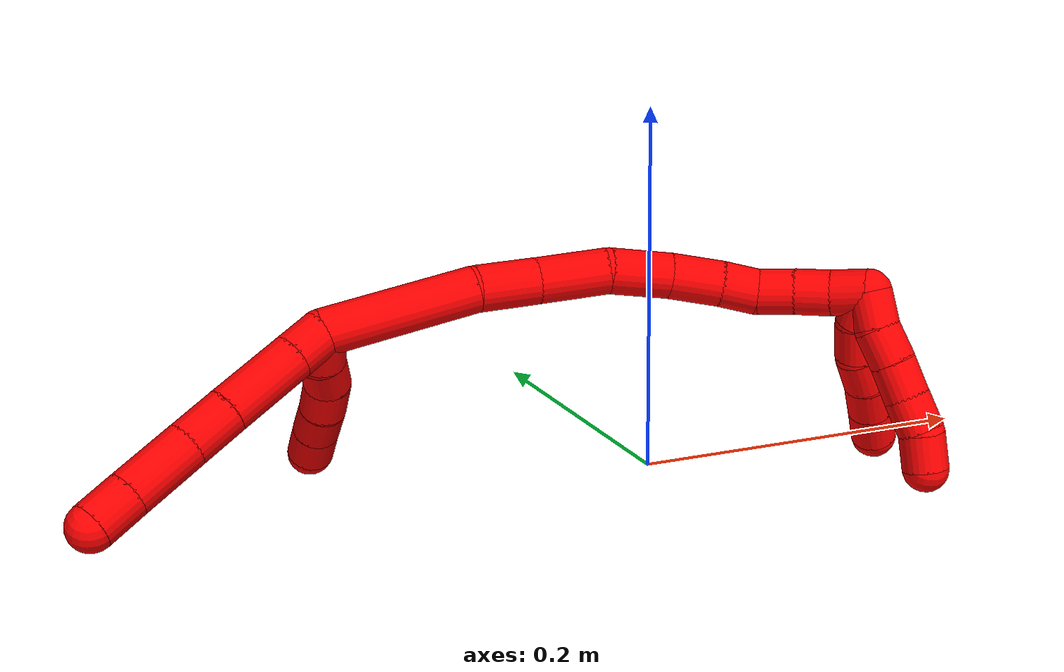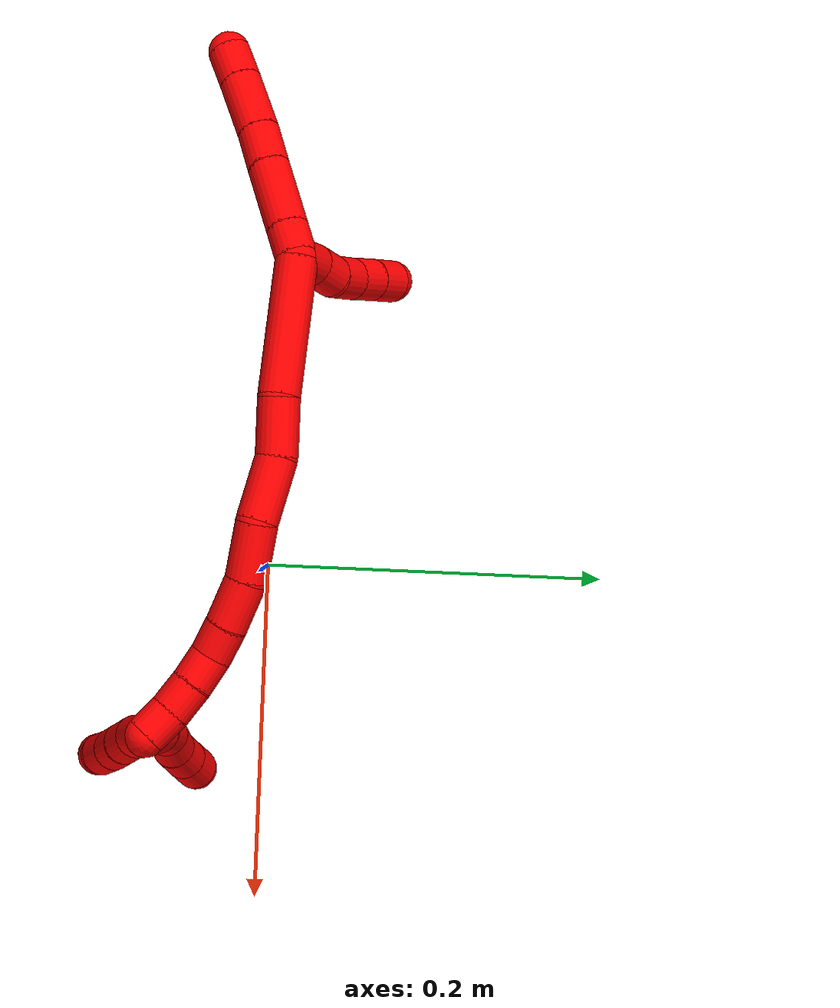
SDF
<sdf version="1.7">
 <world name="default">
  <model name="2">
   <static>0</static>
   <link name="2">
    <collision name="collision-cylinder-e_1_2_8">
     <pose>-0.008926 -0.004605 -0.001841 1.95113 -1.06363 -1.43069</pose>
     <geometry><cylinder><radius>0.0125</radius><length>0.020423</length></cylinder></geometry>
     <surface>
      <friction><ode><mu>1.16</mu><mu2>1.16</mu2><slip1>0</slip1><slip2>0</slip2></ode></friction>
      <contact><ode><kp>1e+06</kp><kd>1</kd><max_vel>0</max_vel><min_depth>0.001</min_depth></ode></contact>
     </surface>
    </collision>
    <visual name="visual-cylinder-e_1_2_8">
     <pose>-0.008926 -0.004605 -0.001841 1.95113 -1.06363 -1.43069</pose>
     <geometry><cylinder><radius>0.0125</radius><length>0.020423</length></cylinder></geometry>
     <material><ambient>1 0 0 1</ambient></material>
    </visual>
    <collision name="collision-cylinder-e_2_8_9">
     <pose>-0.037016 -0.019109 -0.007658 1.95272 -1.0629 -1.43156</pose>
     <geometry><cylinder><radius>0.0125</radius><length>0.043865</length></cylinder></geometry>
     <surface>
      <friction><ode><mu>1.16</mu><mu2>1.16</mu2><slip1>0</slip1><slip2>0</slip2></ode></friction>
      <contact><ode><kp>1e+06</kp><kd>1</kd><max_vel>0</max_vel><min_depth>0.001</min_depth></ode></contact>
     </surface>
    </collision>
    <visual name="visual-cylinder-e_2_8_9">
     <pose>-0.037016 -0.019109 -0.007658 1.95272 -1.0629 -1.43156</pose>
     <geometry><cylinder><radius>0.0125</radius><length>0.043865</length></cylinder></geometry>
     <material><ambient>1 0 0 1</ambient></material>
    </visual>
    <collision name="collision-cylinder-e_3_9_10">
     <pose>-0.067494 -0.034797 -0.014259 1.99655 -1.05882 -1.47424</pose>
     <geometry><cylinder><radius>0.0125</radius><length>0.025956</length></cylinder></geometry>
     <surface>
      <friction><ode><mu>1.16</mu><mu2>1.16</mu2><slip1>0</slip1><slip2>0</slip2></ode></friction>
      <contact><ode><kp>1e+06</kp><kd>1</kd><max_vel>0</max_vel><min_depth>0.001</min_depth></ode></contact>
     </surface>
    </collision>
    <visual name="visual-cylinder-e_3_9_10">
     <pose>-0.067494 -0.034797 -0.014259 1.99655 -1.05882 -1.47424</pose>
     <geometry><cylinder><radius>0.0125</radius><length>0.025956</length></cylinder></geometry>
     <material><ambient>1 0 0 1</ambient></material>
    </visual>
    <collision name="collision-cylinder-e_4_10_11">
     <pose>-0.094873 -0.049546 -0.019755 1.88085 -1.04104 -1.33182</pose>
     <geometry><cylinder><radius>0.0125</radius><length>0.037234</length></cylinder></geometry>
     <surface>
      <friction><ode><mu>1.16</mu><mu2>1.16</mu2><slip1>0</slip1><slip2>0</slip2></ode></friction>
      <contact><ode><kp>1e+06</kp><kd>1</kd><max_vel>0</max_vel><min_depth>0.001</min_depth></ode></contact>
     </surface>
    </collision>
    <visual name="visual-cylinder-e_4_10_11">
     <pose>-0.094873 -0.049546 -0.019755 1.88085 -1.04104 -1.33182</pose>
     <geometry><cylinder><radius>0.0125</radius><length>0.037234</length></cylinder></geometry>
     <material><ambient>1 0 0 1</ambient></material>
    </visual>
    <collision name="collision-cylinder-e_5_11_6">
     <pose>-0.120582 -0.064077 -0.024288 1.86073 -1.02827 -1.29708</pose>
     <geometry><cylinder><radius>0.0125</radius><length>0.022523</length></cylinder></geometry>
     <surface>
      <friction><ode><mu>1.16</mu><mu2>1.16</mu2><slip1>0</slip1><slip2>0</slip2></ode></friction>
      <contact><ode><kp>1e+06</kp><kd>1</kd><max_vel>0</max_vel><min_depth>0.001</min_depth></ode></contact>
     </surface>
    </collision>
    <visual name="visual-cylinder-e_5_11_6">
     <pose>-0.120582 -0.064077 -0.024288 1.86073 -1.02827 -1.29708</pose>
     <geometry><cylinder><radius>0.0125</radius><length>0.022523</length></cylinder></geometry>
     <material><ambient>1 0 0 1</ambient></material>
    </visual>
    <collision name="collision-cylinder-e_1_2_12">
     <pose>0.000264 0.000131 -0.009996 -3.12846 0.026414 -2.21886</pose>
     <geometry><cylinder><radius>0.0125</radius><length>0.02</length></cylinder></geometry>
     <surface>
      <friction><ode><mu>1.16</mu><mu2>1.16</mu2><slip1>0</slip1><slip2>0</slip2></ode></friction>
      <contact><ode><kp>1e+06</kp><kd>1</kd><max_vel>0</max_vel><min_depth>0.001</min_depth></ode></contact>
     </surface>
    </collision>
    <visual name="visual-cylinder-e_1_2_12">
     <pose>0.000264 0.000131 -0.009996 -3.12846 0.026414 -2.21886</pose>
     <geometry><cylinder><radius>0.0125</radius><length>0.02</length></cylinder></geometry>
     <material><ambient>1 0 0 1</ambient></material>
    </visual>
    <collision name="collision-cylinder-e_2_12_13">
     <pose>0.002452 0.001346 -0.029744 -3.03091 0.193622 -2.10479</pose>
     <geometry><cylinder><radius>0.0125</radius><length>0.02</length></cylinder></geometry>
     <surface>
      <friction><ode><mu>1.16</mu><mu2>1.16</mu2><slip1>0</slip1><slip2>0</slip2></ode></friction>
      <contact><ode><kp>1e+06</kp><kd>1</kd><max_vel>0</max_vel><min_depth>0.001</min_depth></ode></contact>
     </surface>
    </collision>
    <visual name="visual-cylinder-e_2_12_13">
     <pose>0.002452 0.001346 -0.029744 -3.03091 0.193622 -2.10479</pose>
     <geometry><cylinder><radius>0.0125</radius><length>0.02</length></cylinder></geometry>
     <material><ambient>1 0 0 1</ambient></material>
    </visual>
    <collision name="collision-cylinder-e_3_13_14">
     <pose>0.0034 0.003145 -0.049424 -3.0697 -0.097849 1.87464</pose>
     <geometry><cylinder><radius>0.0125</radius><length>0.02</length></cylinder></geometry>
     <surface>
      <friction><ode><mu>1.16</mu><mu2>1.16</mu2><slip1>0</slip1><slip2>0</slip2></ode></friction>
      <contact><ode><kp>1e+06</kp><kd>1</kd><max_vel>0</max_vel><min_depth>0.001</min_depth></ode></contact>
     </surface>
    </collision>
    <visual name="visual-cylinder-e_3_13_14">
     <pose>0.0034 0.003145 -0.049424 -3.0697 -0.097849 1.87464</pose>
     <geometry><cylinder><radius>0.0125</radius><length>0.02</length></cylinder></geometry>
     <material><ambient>1 0 0 1</ambient></material>
    </visual>
    <collision name="collision-cylinder-e_4_14_15">
     <pose>0.001185 0.005516 -0.069134 -2.97393 -0.124057 1.27301</pose>
     <geometry><cylinder><radius>0.0125</radius><length>0.02</length></cylinder></geometry>
     <surface>
      <friction><ode><mu>1.16</mu><mu2>1.16</mu2><slip1>0</slip1><slip2>0</slip2></ode></friction>
      <contact><ode><kp>1e+06</kp><kd>1</kd><max_vel>0</max_vel><min_depth>0.001</min_depth></ode></contact>
     </surface>
    </collision>
    <visual name="visual-cylinder-e_4_14_15">
     <pose>0.001185 0.005516 -0.069134 -2.97393 -0.124057 1.27301</pose>
     <geometry><cylinder><radius>0.0125</radius><length>0.02</length></cylinder></geometry>
     <material><ambient>1 0 0 1</ambient></material>
    </visual>
    <collision name="collision-cylinder-e_5_15_5">
     <pose>-0.001111 0.008609 -0.088758 -2.99653 -0.106039 1.26168</pose>
     <geometry><cylinder><radius>0.0125</radius><length>0.02</length></cylinder></geometry>
     <surface>
      <friction><ode><mu>1.16</mu><mu2>1.16</mu2><slip1>0</slip1><slip2>0</slip2></ode></friction>
      <contact><ode><kp>1e+06</kp><kd>1</kd><max_vel>0</max_vel><min_depth>0.001</min_depth></ode></contact>
     </surface>
    </collision>
    <visual name="visual-cylinder-e_5_15_5">
     <pose>-0.001111 0.008609 -0.088758 -2.99653 -0.106039 1.26168</pose>
     <geometry><cylinder><radius>0.0125</radius><length>0.02</length></cylinder></geometry>
     <material><ambient>1 0 0 1</ambient></material>
    </visual>
    <collision name="collision-cylinder-e_1_2_16">
     <pose>0.041167 -0.000145 0.005015 0.028958 1.44952 0.025643</pose>
     <geometry><cylinder><radius>0.0125</radius><length>0.082943</length></cylinder></geometry>
     <surface>
      <friction><ode><mu>1.16</mu><mu2>1.16</mu2><slip1>0</slip1><slip2>0</slip2></ode></friction>
      <contact><ode><kp>1e+06</kp><kd>1</kd><max_vel>0</max_vel><min_depth>0.001</min_depth></ode></contact>
     </surface>
    </collision>
    <visual name="visual-cylinder-e_1_2_16">
     <pose>0.041167 -0.000145 0.005015 0.028958 1.44952 0.025643</pose>
     <geometry><cylinder><radius>0.0125</radius><length>0.082943</length></cylinder></geometry>
     <material><ambient>1 0 0 1</ambient></material>
    </visual>
    <collision name="collision-cylinder-e_2_16_17">
     <pose>0.099672 -0.000479 0.008884 2.97876 1.50391 2.96754</pose>
     <geometry><cylinder><radius>0.0125</radius><length>0.034755</length></cylinder></geometry>
     <surface>
      <friction><ode><mu>1.16</mu><mu2>1.16</mu2><slip1>0</slip1><slip2>0</slip2></ode></friction>
      <contact><ode><kp>1e+06</kp><kd>1</kd><max_vel>0</max_vel><min_depth>0.001</min_depth></ode></contact>
     </surface>
    </collision>
    <visual name="visual-cylinder-e_2_16_17">
     <pose>0.099672 -0.000479 0.008884 2.97876 1.50391 2.96754</pose>
     <geometry><cylinder><radius>0.0125</radius><length>0.034755</length></cylinder></geometry>
     <material><ambient>1 0 0 1</ambient></material>
    </visual>
    <collision name="collision-cylinder-e_3_17_18">
     <pose>0.135819 -0.004458 0.010112 1.01135 1.3373 0.824745</pose>
     <geometry><cylinder><radius>0.0125</radius><length>0.038665</length></cylinder></geometry>
     <surface>
      <friction><ode><mu>1.16</mu><mu2>1.16</mu2><slip1>0</slip1><slip2>0</slip2></ode></friction>
      <contact><ode><kp>1e+06</kp><kd>1</kd><max_vel>0</max_vel><min_depth>0.001</min_depth></ode></contact>
     </surface>
    </collision>
    <visual name="visual-cylinder-e_3_17_18">
     <pose>0.135819 -0.004458 0.010112 1.01135 1.3373 0.824745</pose>
     <geometry><cylinder><radius>0.0125</radius><length>0.038665</length></cylinder></geometry>
     <material><ambient>1 0 0 1</ambient></material>
    </visual>
    <collision name="collision-cylinder-e_4_18_19">
     <pose>0.171279 -0.01207 0.010017 2.14453 1.30414 1.90272</pose>
     <geometry><cylinder><radius>0.0125</radius><length>0.034525</length></cylinder></geometry>
     <surface>
      <friction><ode><mu>1.16</mu><mu2>1.16</mu2><slip1>0</slip1><slip2>0</slip2></ode></friction>
      <contact><ode><kp>1e+06</kp><kd>1</kd><max_vel>0</max_vel><min_depth>0.001</min_depth></ode></contact>
     </surface>
    </collision>
    <visual name="visual-cylinder-e_4_18_19">
     <pose>0.171279 -0.01207 0.010017 2.14453 1.30414 1.90272</pose>
     <geometry><cylinder><radius>0.0125</radius><length>0.034525</length></cylinder></geometry>
     <material><ambient>1 0 0 1</ambient></material>
    </visual>
    <collision name="collision-cylinder-e_5_19_20">
     <pose>0.201065 -0.02202 0.006668 1.71337 1.13024 1.26328</pose>
     <geometry><cylinder><radius>0.0125</radius><length>0.029041</length></cylinder></geometry>
     <surface>
      <friction><ode><mu>1.16</mu><mu2>1.16</mu2><slip1>0</slip1><slip2>0</slip2></ode></friction>
      <contact><ode><kp>1e+06</kp><kd>1</kd><max_vel>0</max_vel><min_depth>0.001</min_depth></ode></contact>
     </surface>
    </collision>
    <visual name="visual-cylinder-e_5_19_20">
     <pose>0.201065 -0.02202 0.006668 1.71337 1.13024 1.26328</pose>
     <geometry><cylinder><radius>0.0125</radius><length>0.029041</length></cylinder></geometry>
     <material><ambient>1 0 0 1</ambient></material>
    </visual>
    <collision name="collision-cylinder-e_6_20_21">
     <pose>0.222874 -0.033078 0.00503 1.72357 1.04904 1.18678</pose>
     <geometry><cylinder><radius>0.0125</radius><length>0.020012</length></cylinder></geometry>
     <surface>
      <friction><ode><mu>1.16</mu><mu2>1.16</mu2><slip1>0</slip1><slip2>0</slip2></ode></friction>
      <contact><ode><kp>1e+06</kp><kd>1</kd><max_vel>0</max_vel><min_depth>0.001</min_depth></ode></contact>
     </surface>
    </collision>
    <visual name="visual-cylinder-e_6_20_21">
     <pose>0.222874 -0.033078 0.00503 1.72357 1.04904 1.18678</pose>
     <geometry><cylinder><radius>0.0125</radius><length>0.020012</length></cylinder></geometry>
     <material><ambient>1 0 0 1</ambient></material>
    </visual>
    <collision name="collision-cylinder-e_7_21_22">
     <pose>0.240189 -0.042652 0.006302 1.15858 1.04017 0.716869</pose>
     <geometry><cylinder><radius>0.0125</radius><length>0.020037</length></cylinder></geometry>
     <surface>
      <friction><ode><mu>1.16</mu><mu2>1.16</mu2><slip1>0</slip1><slip2>0</slip2></ode></friction>
      <contact><ode><kp>1e+06</kp><kd>1</kd><max_vel>0</max_vel><min_depth>0.001</min_depth></ode></contact>
     </surface>
    </collision>
    <visual name="visual-cylinder-e_7_21_22">
     <pose>0.240189 -0.042652 0.006302 1.15858 1.04017 0.716869</pose>
     <geometry><cylinder><radius>0.0125</radius><length>0.020037</length></cylinder></geometry>
     <material><ambient>1 0 0 1</ambient></material>
    </visual>
    <collision name="collision-cylinder-e_8_22_23">
     <pose>0.256984 -0.052681 0.010485 1.19049 0.952779 0.672361</pose>
     <geometry><cylinder><radius>0.0125</radius><length>0.02001</length></cylinder></geometry>
     <surface>
      <friction><ode><mu>1.16</mu><mu2>1.16</mu2><slip1>0</slip1><slip2>0</slip2></ode></friction>
      <contact><ode><kp>1e+06</kp><kd>1</kd><max_vel>0</max_vel><min_depth>0.001</min_depth></ode></contact>
     </surface>
    </collision>
    <visual name="visual-cylinder-e_8_22_23">
     <pose>0.256984 -0.052681 0.010485 1.19049 0.952779 0.672361</pose>
     <geometry><cylinder><radius>0.0125</radius><length>0.02001</length></cylinder></geometry>
     <material><ambient>1 0 0 1</ambient></material>
    </visual>
    <collision name="collision-cylinder-e_9_23_1">
     <pose>0.272648 -0.063692 0.016108 1.01829 0.848866 0.49422</pose>
     <geometry><cylinder><radius>0.0125</radius><length>0.020013</length></cylinder></geometry>
     <surface>
      <friction><ode><mu>1.16</mu><mu2>1.16</mu2><slip1>0</slip1><slip2>0</slip2></ode></friction>
      <contact><ode><kp>1e+06</kp><kd>1</kd><max_vel>0</max_vel><min_depth>0.001</min_depth></ode></contact>
     </surface>
    </collision>
    <visual name="visual-cylinder-e_9_23_1">
     <pose>0.272648 -0.063692 0.016108 1.01829 0.848866 0.49422</pose>
     <geometry><cylinder><radius>0.0125</radius><length>0.020013</length></cylinder></geometry>
     <material><ambient>1 0 0 1</ambient></material>
    </visual>
    <collision name="collision-cylinder-e_1_1_24">
     <pose>0.28016 -0.076697 0.012826 2.31204 0.000125 0.000283</pose>
     <geometry><cylinder><radius>0.0125</radius><length>0.02</length></cylinder></geometry>
     <surface>
      <friction><ode><mu>1.16</mu><mu2>1.16</mu2><slip1>0</slip1><slip2>0</slip2></ode></friction>
      <contact><ode><kp>1e+06</kp><kd>1</kd><max_vel>0</max_vel><min_depth>0.001</min_depth></ode></contact>
     </surface>
    </collision>
    <visual name="visual-cylinder-e_1_1_24">
     <pose>0.28016 -0.076697 0.012826 2.31204 0.000125 0.000283</pose>
     <geometry><cylinder><radius>0.0125</radius><length>0.02</length></cylinder></geometry>
     <material><ambient>1 0 0 1</ambient></material>
    </visual>
    <collision name="collision-cylinder-e_2_24_25">
     <pose>0.282217 -0.091766 2.4e-05 2.2372 0.207019 0.421353</pose>
     <geometry><cylinder><radius>0.0125</radius><length>0.02</length></cylinder></geometry>
     <surface>
      <friction><ode><mu>1.16</mu><mu2>1.16</mu2><slip1>0</slip1><slip2>0</slip2></ode></friction>
      <contact><ode><kp>1e+06</kp><kd>1</kd><max_vel>0</max_vel><min_depth>0.001</min_depth></ode></contact>
     </surface>
    </collision>
    <visual name="visual-cylinder-e_2_24_25">
     <pose>0.282217 -0.091766 2.4e-05 2.2372 0.207019 0.421353</pose>
     <geometry><cylinder><radius>0.0125</radius><length>0.02</length></cylinder></geometry>
     <material><ambient>1 0 0 1</ambient></material>
    </visual>
    <collision name="collision-cylinder-e_3_25_26">
     <pose>0.286005 -0.106853 -0.012531 2.29233 0.174163 0.381481</pose>
     <geometry><cylinder><radius>0.0125</radius><length>0.02</length></cylinder></geometry>
     <surface>
      <friction><ode><mu>1.16</mu><mu2>1.16</mu2><slip1>0</slip1><slip2>0</slip2></ode></friction>
      <contact><ode><kp>1e+06</kp><kd>1</kd><max_vel>0</max_vel><min_depth>0.001</min_depth></ode></contact>
     </surface>
    </collision>
    <visual name="visual-cylinder-e_3_25_26">
     <pose>0.286005 -0.106853 -0.012531 2.29233 0.174163 0.381481</pose>
     <geometry><cylinder><radius>0.0125</radius><length>0.02</length></cylinder></geometry>
     <material><ambient>1 0 0 1</ambient></material>
    </visual>
    <collision name="collision-cylinder-e_4_26_27">
     <pose>0.28924 -0.122149 -0.024979 2.21561 0.150779 0.30035</pose>
     <geometry><cylinder><radius>0.0125</radius><length>0.02</length></cylinder></geometry>
     <surface>
      <friction><ode><mu>1.16</mu><mu2>1.16</mu2><slip1>0</slip1><slip2>0</slip2></ode></friction>
      <contact><ode><kp>1e+06</kp><kd>1</kd><max_vel>0</max_vel><min_depth>0.001</min_depth></ode></contact>
     </surface>
    </collision>
    <visual name="visual-cylinder-e_4_26_27">
     <pose>0.28924 -0.122149 -0.024979 2.21561 0.150779 0.30035</pose>
     <geometry><cylinder><radius>0.0125</radius><length>0.02</length></cylinder></geometry>
     <material><ambient>1 0 0 1</ambient></material>
    </visual>
    <collision name="collision-cylinder-e_5_27_4">
     <pose>0.290597 -0.136076 -0.0389 2.4948 -0.01448 -0.043196</pose>
     <geometry><cylinder><radius>0.0125</radius><length>0.02</length></cylinder></geometry>
     <surface>
      <friction><ode><mu>1.16</mu><mu2>1.16</mu2><slip1>0</slip1><slip2>0</slip2></ode></friction>
      <contact><ode><kp>1e+06</kp><kd>1</kd><max_vel>0</max_vel><min_depth>0.001</min_depth></ode></contact>
     </surface>
    </collision>
    <visual name="visual-cylinder-e_5_27_4">
     <pose>0.290597 -0.136076 -0.0389 2.4948 -0.01448 -0.043196</pose>
     <geometry><cylinder><radius>0.0125</radius><length>0.02</length></cylinder></geometry>
     <material><ambient>1 0 0 1</ambient></material>
    </visual>
    <collision name="collision-cylinder-e_1_1_28">
     <pose>0.278334 -0.070847 0.009865 2.98575 -0.183477 -1.73412</pose>
     <geometry><cylinder><radius>0.0125</radius><length>0.02</length></cylinder></geometry>
     <surface>
      <friction><ode><mu>1.16</mu><mu2>1.16</mu2><slip1>0</slip1><slip2>0</slip2></ode></friction>
      <contact><ode><kp>1e+06</kp><kd>1</kd><max_vel>0</max_vel><min_depth>0.001</min_depth></ode></contact>
     </surface>
    </collision>
    <visual name="visual-cylinder-e_1_1_28">
     <pose>0.278334 -0.070847 0.009865 2.98575 -0.183477 -1.73412</pose>
     <geometry><cylinder><radius>0.0125</radius><length>0.02</length></cylinder></geometry>
     <material><ambient>1 0 0 1</ambient></material>
    </visual>
    <collision name="collision-cylinder-e_2_28_29">
     <pose>0.277161 -0.075301 -0.009387 2.84379 0.065192 0.42808</pose>
     <geometry><cylinder><radius>0.0125</radius><length>0.02</length></cylinder></geometry>
     <surface>
      <friction><ode><mu>1.16</mu><mu2>1.16</mu2><slip1>0</slip1><slip2>0</slip2></ode></friction>
      <contact><ode><kp>1e+06</kp><kd>1</kd><max_vel>0</max_vel><min_depth>0.001</min_depth></ode></contact>
     </surface>
    </collision>
    <visual name="visual-cylinder-e_2_28_29">
     <pose>0.277161 -0.075301 -0.009387 2.84379 0.065192 0.42808</pose>
     <geometry><cylinder><radius>0.0125</radius><length>0.02</length></cylinder></geometry>
     <material><ambient>1 0 0 1</ambient></material>
    </visual>
    <collision name="collision-cylinder-e_3_29_30">
     <pose>0.281309 -0.081031 -0.027867 2.83783 0.357152 1.73495</pose>
     <geometry><cylinder><radius>0.0125</radius><length>0.02</length></cylinder></geometry>
     <surface>
      <friction><ode><mu>1.16</mu><mu2>1.16</mu2><slip1>0</slip1><slip2>0</slip2></ode></friction>
      <contact><ode><kp>1e+06</kp><kd>1</kd><max_vel>0</max_vel><min_depth>0.001</min_depth></ode></contact>
     </surface>
    </collision>
    <visual name="visual-cylinder-e_3_29_30">
     <pose>0.281309 -0.081031 -0.027867 2.83783 0.357152 1.73495</pose>
     <geometry><cylinder><radius>0.0125</radius><length>0.02</length></cylinder></geometry>
     <material><ambient>1 0 0 1</ambient></material>
    </visual>
    <collision name="collision-cylinder-e_4_30_31">
     <pose>0.287546 -0.085424 -0.046292 2.97544 0.277696 2.06689</pose>
     <geometry><cylinder><radius>0.0125</radius><length>0.02</length></cylinder></geometry>
     <surface>
      <friction><ode><mu>1.16</mu><mu2>1.16</mu2><slip1>0</slip1><slip2>0</slip2></ode></friction>
      <contact><ode><kp>1e+06</kp><kd>1</kd><max_vel>0</max_vel><min_depth>0.001</min_depth></ode></contact>
     </surface>
    </collision>
    <visual name="visual-cylinder-e_4_30_31">
     <pose>0.287546 -0.085424 -0.046292 2.97544 0.277696 2.06689</pose>
     <geometry><cylinder><radius>0.0125</radius><length>0.02</length></cylinder></geometry>
     <material><ambient>1 0 0 1</ambient></material>
    </visual>
    <collision name="collision-cylinder-e_5_31_3">
     <pose>0.292896 -0.08861 -0.065297 2.97556 0.263909 2.02164</pose>
     <geometry><cylinder><radius>0.0125</radius><length>0.02</length></cylinder></geometry>
     <surface>
      <friction><ode><mu>1.16</mu><mu2>1.16</mu2><slip1>0</slip1><slip2>0</slip2></ode></friction>
      <contact><ode><kp>1e+06</kp><kd>1</kd><max_vel>0</max_vel><min_depth>0.001</min_depth></ode></contact>
     </surface>
    </collision>
    <visual name="visual-cylinder-e_5_31_3">
     <pose>0.292896 -0.08861 -0.065297 2.97556 0.263909 2.02164</pose>
     <geometry><cylinder><radius>0.0125</radius><length>0.02</length></cylinder></geometry>
     <material><ambient>1 0 0 1</ambient></material>
    </visual>
    <collision name="collision-sphere-3">
     <pose>0.295505 -0.090206 -0.074818 0 -0 0</pose>
     <geometry><sphere><radius>0.0125</radius></sphere></geometry>
     <surface>
      <friction><ode><mu>1.16</mu><mu2>1.16</mu2><slip1>0</slip1><slip2>0</slip2></ode></friction>
      <contact><ode><kp>1e+06</kp><kd>1</kd><max_vel>0</max_vel><min_depth>0.001</min_depth></ode></contact>
     </surface>
    </collision>
    <visual name="visual-sphere-3">
     <pose>0.295505 -0.090206 -0.074818 0 -0 0</pose>
     <geometry><sphere><radius>0.0125</radius></sphere></geometry>
     <material><ambient>1 0 0 1</ambient></material>
    </visual>
    <collision name="collision-sphere-31">
     <pose>0.290288 -0.087015 -0.055776 0 -0 0</pose>
     <geometry><sphere><radius>0.0125</radius></sphere></geometry>
     <surface>
      <friction><ode><mu>1.16</mu><mu2>1.16</mu2><slip1>0</slip1><slip2>0</slip2></ode></friction>
      <contact><ode><kp>1e+06</kp><kd>1</kd><max_vel>0</max_vel><min_depth>0.001</min_depth></ode></contact>
     </surface>
    </collision>
    <visual name="visual-sphere-31">
     <pose>0.290288 -0.087015 -0.055776 0 -0 0</pose>
     <geometry><sphere><radius>0.0125</radius></sphere></geometry>
     <material><ambient>1 0 0 1</ambient></material>
    </visual>
    <collision name="collision-sphere-30">
     <pose>0.284805 -0.083834 -0.036807 0 -0 0</pose>
     <geometry><sphere><radius>0.0125</radius></sphere></geometry>
     <surface>
      <friction><ode><mu>1.16</mu><mu2>1.16</mu2><slip1>0</slip1><slip2>0</slip2></ode></friction>
      <contact><ode><kp>1e+06</kp><kd>1</kd><max_vel>0</max_vel><min_depth>0.001</min_depth></ode></contact>
     </surface>
    </collision>
    <visual name="visual-sphere-30">
     <pose>0.284805 -0.083834 -0.036807 0 -0 0</pose>
     <geometry><sphere><radius>0.0125</radius></sphere></geometry>
     <material><ambient>1 0 0 1</ambient></material>
    </visual>
    <collision name="collision-sphere-29">
     <pose>0.277813 -0.078229 -0.018927 0 -0 0</pose>
     <geometry><sphere><radius>0.0125</radius></sphere></geometry>
     <surface>
      <friction><ode><mu>1.16</mu><mu2>1.16</mu2><slip1>0</slip1><slip2>0</slip2></ode></friction>
      <contact><ode><kp>1e+06</kp><kd>1</kd><max_vel>0</max_vel><min_depth>0.001</min_depth></ode></contact>
     </surface>
    </collision>
    <visual name="visual-sphere-29">
     <pose>0.277813 -0.078229 -0.018927 0 -0 0</pose>
     <geometry><sphere><radius>0.0125</radius></sphere></geometry>
     <material><ambient>1 0 0 1</ambient></material>
    </visual>
    <collision name="collision-sphere-28">
     <pose>0.27651 -0.072373 0.000152 0 -0 0</pose>
     <geometry><sphere><radius>0.0125</radius></sphere></geometry>
     <surface>
      <friction><ode><mu>1.16</mu><mu2>1.16</mu2><slip1>0</slip1><slip2>0</slip2></ode></friction>
      <contact><ode><kp>1e+06</kp><kd>1</kd><max_vel>0</max_vel><min_depth>0.001</min_depth></ode></contact>
     </surface>
    </collision>
    <visual name="visual-sphere-28">
     <pose>0.27651 -0.072373 0.000152 0 -0 0</pose>
     <geometry><sphere><radius>0.0125</radius></sphere></geometry>
     <material><ambient>1 0 0 1</ambient></material>
    </visual>
    <collision name="collision-sphere-4">
     <pose>0.290452 -0.142102 -0.04688 0 -0 0</pose>
     <geometry><sphere><radius>0.0125</radius></sphere></geometry>
     <surface>
      <friction><ode><mu>1.16</mu><mu2>1.16</mu2><slip1>0</slip1><slip2>0</slip2></ode></friction>
      <contact><ode><kp>1e+06</kp><kd>1</kd><max_vel>0</max_vel><min_depth>0.001</min_depth></ode></contact>
     </surface>
    </collision>
    <visual name="visual-sphere-4">
     <pose>0.290452 -0.142102 -0.04688 0 -0 0</pose>
     <geometry><sphere><radius>0.0125</radius></sphere></geometry>
     <material><ambient>1 0 0 1</ambient></material>
    </visual>
    <collision name="collision-sphere-27">
     <pose>0.290742 -0.13005 -0.030921 0 -0 0</pose>
     <geometry><sphere><radius>0.0125</radius></sphere></geometry>
     <surface>
      <friction><ode><mu>1.16</mu><mu2>1.16</mu2><slip1>0</slip1><slip2>0</slip2></ode></friction>
      <contact><ode><kp>1e+06</kp><kd>1</kd><max_vel>0</max_vel><min_depth>0.001</min_depth></ode></contact>
     </surface>
    </collision>
    <visual name="visual-sphere-27">
     <pose>0.290742 -0.13005 -0.030921 0 -0 0</pose>
     <geometry><sphere><radius>0.0125</radius></sphere></geometry>
     <material><ambient>1 0 0 1</ambient></material>
    </visual>
    <collision name="collision-sphere-26">
     <pose>0.287738 -0.114248 -0.019036 0 -0 0</pose>
     <geometry><sphere><radius>0.0125</radius></sphere></geometry>
     <surface>
      <friction><ode><mu>1.16</mu><mu2>1.16</mu2><slip1>0</slip1><slip2>0</slip2></ode></friction>
      <contact><ode><kp>1e+06</kp><kd>1</kd><max_vel>0</max_vel><min_depth>0.001</min_depth></ode></contact>
     </surface>
    </collision>
    <visual name="visual-sphere-26">
     <pose>0.287738 -0.114248 -0.019036 0 -0 0</pose>
     <geometry><sphere><radius>0.0125</radius></sphere></geometry>
     <material><ambient>1 0 0 1</ambient></material>
    </visual>
    <collision name="collision-sphere-25">
     <pose>0.284272 -0.099459 -0.006025 0 -0 0</pose>
     <geometry><sphere><radius>0.0125</radius></sphere></geometry>
     <surface>
      <friction><ode><mu>1.16</mu><mu2>1.16</mu2><slip1>0</slip1><slip2>0</slip2></ode></friction>
      <contact><ode><kp>1e+06</kp><kd>1</kd><max_vel>0</max_vel><min_depth>0.001</min_depth></ode></contact>
     </surface>
    </collision>
    <visual name="visual-sphere-25">
     <pose>0.284272 -0.099459 -0.006025 0 -0 0</pose>
     <geometry><sphere><radius>0.0125</radius></sphere></geometry>
     <material><ambient>1 0 0 1</ambient></material>
    </visual>
    <collision name="collision-sphere-24">
     <pose>0.280161 -0.084074 0.006074 0 -0 0</pose>
     <geometry><sphere><radius>0.0125</radius></sphere></geometry>
     <surface>
      <friction><ode><mu>1.16</mu><mu2>1.16</mu2><slip1>0</slip1><slip2>0</slip2></ode></friction>
      <contact><ode><kp>1e+06</kp><kd>1</kd><max_vel>0</max_vel><min_depth>0.001</min_depth></ode></contact>
     </surface>
    </collision>
    <visual name="visual-sphere-24">
     <pose>0.280161 -0.084074 0.006074 0 -0 0</pose>
     <geometry><sphere><radius>0.0125</radius></sphere></geometry>
     <material><ambient>1 0 0 1</ambient></material>
    </visual>
    <collision name="collision-sphere-1">
     <pose>0.280159 -0.069321 0.019578 0 -0 0</pose>
     <geometry><sphere><radius>0.0125</radius></sphere></geometry>
     <surface>
      <friction><ode><mu>1.16</mu><mu2>1.16</mu2><slip1>0</slip1><slip2>0</slip2></ode></friction>
      <contact><ode><kp>1e+06</kp><kd>1</kd><max_vel>0</max_vel><min_depth>0.001</min_depth></ode></contact>
     </surface>
    </collision>
    <visual name="visual-sphere-1">
     <pose>0.280159 -0.069321 0.019578 0 -0 0</pose>
     <geometry><sphere><radius>0.0125</radius></sphere></geometry>
     <material><ambient>1 0 0 1</ambient></material>
    </visual>
    <collision name="collision-sphere-23">
     <pose>0.265138 -0.058063 0.012637 0 -0 0</pose>
     <geometry><sphere><radius>0.0125</radius></sphere></geometry>
     <surface>
      <friction><ode><mu>1.16</mu><mu2>1.16</mu2><slip1>0</slip1><slip2>0</slip2></ode></friction>
      <contact><ode><kp>1e+06</kp><kd>1</kd><max_vel>0</max_vel><min_depth>0.001</min_depth></ode></contact>
     </surface>
    </collision>
    <visual name="visual-sphere-23">
     <pose>0.265138 -0.058063 0.012637 0 -0 0</pose>
     <geometry><sphere><radius>0.0125</radius></sphere></geometry>
     <material><ambient>1 0 0 1</ambient></material>
    </visual>
    <collision name="collision-sphere-22">
     <pose>0.24883 -0.047298 0.008333 0 -0 0</pose>
     <geometry><sphere><radius>0.0125</radius></sphere></geometry>
     <surface>
      <friction><ode><mu>1.16</mu><mu2>1.16</mu2><slip1>0</slip1><slip2>0</slip2></ode></friction>
      <contact><ode><kp>1e+06</kp><kd>1</kd><max_vel>0</max_vel><min_depth>0.001</min_depth></ode></contact>
     </surface>
    </collision>
    <visual name="visual-sphere-22">
     <pose>0.24883 -0.047298 0.008333 0 -0 0</pose>
     <geometry><sphere><radius>0.0125</radius></sphere></geometry>
     <material><ambient>1 0 0 1</ambient></material>
    </visual>
    <collision name="collision-sphere-21">
     <pose>0.231548 -0.038007 0.004271 0 -0 0</pose>
     <geometry><sphere><radius>0.0125</radius></sphere></geometry>
     <surface>
      <friction><ode><mu>1.16</mu><mu2>1.16</mu2><slip1>0</slip1><slip2>0</slip2></ode></friction>
      <contact><ode><kp>1e+06</kp><kd>1</kd><max_vel>0</max_vel><min_depth>0.001</min_depth></ode></contact>
     </surface>
    </collision>
    <visual name="visual-sphere-21">
     <pose>0.231548 -0.038007 0.004271 0 -0 0</pose>
     <geometry><sphere><radius>0.0125</radius></sphere></geometry>
     <material><ambient>1 0 0 1</ambient></material>
    </visual>
    <collision name="collision-sphere-6">
     <pose>-0.130226 -0.069649 -0.02595 0 -0 0</pose>
     <geometry><sphere><radius>0.0125</radius></sphere></geometry>
     <surface>
      <friction><ode><mu>1.16</mu><mu2>1.16</mu2><slip1>0</slip1><slip2>0</slip2></ode></friction>
      <contact><ode><kp>1e+06</kp><kd>1</kd><max_vel>0</max_vel><min_depth>0.001</min_depth></ode></contact>
     </surface>
    </collision>
    <visual name="visual-sphere-6">
     <pose>-0.130226 -0.069649 -0.02595 0 -0 0</pose>
     <geometry><sphere><radius>0.0125</radius></sphere></geometry>
     <material><ambient>1 0 0 1</ambient></material>
    </visual>
    <collision name="collision-sphere-11">
     <pose>-0.110938 -0.058505 -0.022626 0 -0 0</pose>
     <geometry><sphere><radius>0.0125</radius></sphere></geometry>
     <surface>
      <friction><ode><mu>1.16</mu><mu2>1.16</mu2><slip1>0</slip1><slip2>0</slip2></ode></friction>
      <contact><ode><kp>1e+06</kp><kd>1</kd><max_vel>0</max_vel><min_depth>0.001</min_depth></ode></contact>
     </surface>
    </collision>
    <visual name="visual-sphere-11">
     <pose>-0.110938 -0.058505 -0.022626 0 -0 0</pose>
     <geometry><sphere><radius>0.0125</radius></sphere></geometry>
     <material><ambient>1 0 0 1</ambient></material>
    </visual>
    <collision name="collision-sphere-10">
     <pose>-0.078807 -0.040587 -0.016885 0 -0 0</pose>
     <geometry><sphere><radius>0.0125</radius></sphere></geometry>
     <surface>
      <friction><ode><mu>1.16</mu><mu2>1.16</mu2><slip1>0</slip1><slip2>0</slip2></ode></friction>
      <contact><ode><kp>1e+06</kp><kd>1</kd><max_vel>0</max_vel><min_depth>0.001</min_depth></ode></contact>
     </surface>
    </collision>
    <visual name="visual-sphere-10">
     <pose>-0.078807 -0.040587 -0.016885 0 -0 0</pose>
     <geometry><sphere><radius>0.0125</radius></sphere></geometry>
     <material><ambient>1 0 0 1</ambient></material>
    </visual>
    <collision name="collision-sphere-9">
     <pose>-0.05618 -0.029007 -0.011633 0 -0 0</pose>
     <geometry><sphere><radius>0.0125</radius></sphere></geometry>
     <surface>
      <friction><ode><mu>1.16</mu><mu2>1.16</mu2><slip1>0</slip1><slip2>0</slip2></ode></friction>
      <contact><ode><kp>1e+06</kp><kd>1</kd><max_vel>0</max_vel><min_depth>0.001</min_depth></ode></contact>
     </surface>
    </collision>
    <visual name="visual-sphere-9">
     <pose>-0.05618 -0.029007 -0.011633 0 -0 0</pose>
     <geometry><sphere><radius>0.0125</radius></sphere></geometry>
     <material><ambient>1 0 0 1</ambient></material>
    </visual>
    <collision name="collision-sphere-2">
     <geometry><sphere><radius>0.0125</radius></sphere></geometry>
     <surface>
      <friction><ode><mu>1.16</mu><mu2>1.16</mu2><slip1>0</slip1><slip2>0</slip2></ode></friction>
      <contact><ode><kp>1e+06</kp><kd>1</kd><max_vel>0</max_vel><min_depth>0.001</min_depth></ode></contact>
     </surface>
    </collision>
    <visual name="visual-sphere-2">
     <geometry><sphere><radius>0.0125</radius></sphere></geometry>
     <material><ambient>1 0 0 1</ambient></material>
    </visual>
    <collision name="collision-sphere-19">
     <pose>0.187931 -0.01589 0.007548 0 -0 0</pose>
     <geometry><sphere><radius>0.0125</radius></sphere></geometry>
     <surface>
      <friction><ode><mu>1.16</mu><mu2>1.16</mu2><slip1>0</slip1><slip2>0</slip2></ode></friction>
      <contact><ode><kp>1e+06</kp><kd>1</kd><max_vel>0</max_vel><min_depth>0.001</min_depth></ode></contact>
     </surface>
    </collision>
    <visual name="visual-sphere-19">
     <pose>0.187931 -0.01589 0.007548 0 -0 0</pose>
     <geometry><sphere><radius>0.0125</radius></sphere></geometry>
     <material><ambient>1 0 0 1</ambient></material>
    </visual>
    <collision name="collision-sphere-8">
     <pose>-0.017852 -0.009211 -0.003682 0 -0 0</pose>
     <geometry><sphere><radius>0.0125</radius></sphere></geometry>
     <surface>
      <friction><ode><mu>1.16</mu><mu2>1.16</mu2><slip1>0</slip1><slip2>0</slip2></ode></friction>
      <contact><ode><kp>1e+06</kp><kd>1</kd><max_vel>0</max_vel><min_depth>0.001</min_depth></ode></contact>
     </surface>
    </collision>
    <visual name="visual-sphere-8">
     <pose>-0.017852 -0.009211 -0.003682 0 -0 0</pose>
     <geometry><sphere><radius>0.0125</radius></sphere></geometry>
     <material><ambient>1 0 0 1</ambient></material>
    </visual>
    <collision name="collision-sphere-12">
     <pose>0.000528 0.000263 -0.019991 0 -0 0</pose>
     <geometry><sphere><radius>0.0125</radius></sphere></geometry>
     <surface>
      <friction><ode><mu>1.16</mu><mu2>1.16</mu2><slip1>0</slip1><slip2>0</slip2></ode></friction>
      <contact><ode><kp>1e+06</kp><kd>1</kd><max_vel>0</max_vel><min_depth>0.001</min_depth></ode></contact>
     </surface>
    </collision>
    <visual name="visual-sphere-12">
     <pose>0.000528 0.000263 -0.019991 0 -0 0</pose>
     <geometry><sphere><radius>0.0125</radius></sphere></geometry>
     <material><ambient>1 0 0 1</ambient></material>
    </visual>
    <collision name="collision-sphere-13">
     <pose>0.004376 0.00243 -0.039497 0 -0 0</pose>
     <geometry><sphere><radius>0.0125</radius></sphere></geometry>
     <surface>
      <friction><ode><mu>1.16</mu><mu2>1.16</mu2><slip1>0</slip1><slip2>0</slip2></ode></friction>
      <contact><ode><kp>1e+06</kp><kd>1</kd><max_vel>0</max_vel><min_depth>0.001</min_depth></ode></contact>
     </surface>
    </collision>
    <visual name="visual-sphere-13">
     <pose>0.004376 0.00243 -0.039497 0 -0 0</pose>
     <geometry><sphere><radius>0.0125</radius></sphere></geometry>
     <material><ambient>1 0 0 1</ambient></material>
    </visual>
    <collision name="collision-sphere-14">
     <pose>0.002423 0.00386 -0.05935 0 -0 0</pose>
     <geometry><sphere><radius>0.0125</radius></sphere></geometry>
     <surface>
      <friction><ode><mu>1.16</mu><mu2>1.16</mu2><slip1>0</slip1><slip2>0</slip2></ode></friction>
      <contact><ode><kp>1e+06</kp><kd>1</kd><max_vel>0</max_vel><min_depth>0.001</min_depth></ode></contact>
     </surface>
    </collision>
    <visual name="visual-sphere-14">
     <pose>0.002423 0.00386 -0.05935 0 -0 0</pose>
     <geometry><sphere><radius>0.0125</radius></sphere></geometry>
     <material><ambient>1 0 0 1</ambient></material>
    </visual>
    <collision name="collision-sphere-15">
     <pose>-5.2e-05 0.007172 -0.078918 0 -0 0</pose>
     <geometry><sphere><radius>0.0125</radius></sphere></geometry>
     <surface>
      <friction><ode><mu>1.16</mu><mu2>1.16</mu2><slip1>0</slip1><slip2>0</slip2></ode></friction>
      <contact><ode><kp>1e+06</kp><kd>1</kd><max_vel>0</max_vel><min_depth>0.001</min_depth></ode></contact>
     </surface>
    </collision>
    <visual name="visual-sphere-15">
     <pose>-5.2e-05 0.007172 -0.078918 0 -0 0</pose>
     <geometry><sphere><radius>0.0125</radius></sphere></geometry>
     <material><ambient>1 0 0 1</ambient></material>
    </visual>
    <collision name="collision-sphere-5">
     <pose>-0.002169 0.010047 -0.098597 0 -0 0</pose>
     <geometry><sphere><radius>0.0125</radius></sphere></geometry>
     <surface>
      <friction><ode><mu>1.16</mu><mu2>1.16</mu2><slip1>0</slip1><slip2>0</slip2></ode></friction>
      <contact><ode><kp>1e+06</kp><kd>1</kd><max_vel>0</max_vel><min_depth>0.001</min_depth></ode></contact>
     </surface>
    </collision>
    <visual name="visual-sphere-5">
     <pose>-0.002169 0.010047 -0.098597 0 -0 0</pose>
     <geometry><sphere><radius>0.0125</radius></sphere></geometry>
     <material><ambient>1 0 0 1</ambient></material>
    </visual>
    <collision name="collision-sphere-16">
     <pose>0.082334 -0.000291 0.010031 0 -0 0</pose>
     <geometry><sphere><radius>0.0125</radius></sphere></geometry>
     <surface>
      <friction><ode><mu>1.16</mu><mu2>1.16</mu2><slip1>0</slip1><slip2>0</slip2></ode></friction>
      <contact><ode><kp>1e+06</kp><kd>1</kd><max_vel>0</max_vel><min_depth>0.001</min_depth></ode></contact>
     </surface>
    </collision>
    <visual name="visual-sphere-16">
     <pose>0.082334 -0.000291 0.010031 0 -0 0</pose>
     <geometry><sphere><radius>0.0125</radius></sphere></geometry>
     <material><ambient>1 0 0 1</ambient></material>
    </visual>
    <collision name="collision-sphere-17">
     <pose>0.117011 -0.000667 0.007738 0 -0 0</pose>
     <geometry><sphere><radius>0.0125</radius></sphere></geometry>
     <surface>
      <friction><ode><mu>1.16</mu><mu2>1.16</mu2><slip1>0</slip1><slip2>0</slip2></ode></friction>
      <contact><ode><kp>1e+06</kp><kd>1</kd><max_vel>0</max_vel><min_depth>0.001</min_depth></ode></contact>
     </surface>
    </collision>
    <visual name="visual-sphere-17">
     <pose>0.117011 -0.000667 0.007738 0 -0 0</pose>
     <geometry><sphere><radius>0.0125</radius></sphere></geometry>
     <material><ambient>1 0 0 1</ambient></material>
    </visual>
    <collision name="collision-sphere-18">
     <pose>0.154626 -0.008249 0.012486 0 -0 0</pose>
     <geometry><sphere><radius>0.0125</radius></sphere></geometry>
     <surface>
      <friction><ode><mu>1.16</mu><mu2>1.16</mu2><slip1>0</slip1><slip2>0</slip2></ode></friction>
      <contact><ode><kp>1e+06</kp><kd>1</kd><max_vel>0</max_vel><min_depth>0.001</min_depth></ode></contact>
     </surface>
    </collision>
    <visual name="visual-sphere-18">
     <pose>0.154626 -0.008249 0.012486 0 -0 0</pose>
     <geometry><sphere><radius>0.0125</radius></sphere></geometry>
     <material><ambient>1 0 0 1</ambient></material>
    </visual>
    <collision name="collision-sphere-20">
     <pose>0.214199 -0.028149 0.005788 0 -0 0</pose>
     <geometry><sphere><radius>0.0125</radius></sphere></geometry>
     <surface>
      <friction><ode><mu>1.16</mu><mu2>1.16</mu2><slip1>0</slip1><slip2>0</slip2></ode></friction>
      <contact><ode><kp>1e+06</kp><kd>1</kd><max_vel>0</max_vel><min_depth>0.001</min_depth></ode></contact>
     </surface>
    </collision>
    <visual name="visual-sphere-20">
     <pose>0.214199 -0.028149 0.005788 0 -0 0</pose>
     <geometry><sphere><radius>0.0125</radius></sphere></geometry>
     <material><ambient>1 0 0 1</ambient></material>
    </visual>
    <inertial>
     <pose>0.121308 -0.038062 -0.011472 0 -0 0</pose>
     <mass>0.75</mass>
     <inertia><ixx>3.2e-05</ixx><ixy>0</ixy><ixz>0</ixz><iyy>7.1e-05</iyy><iyz>0</iyz><izz>-5.6e-05</izz></inertia>
    </inertial>
   </link>
   <pose>-0.179979 0.011044 0.093381 0.494312 -0.090825 -0.016178</pose>
  </model>
 </world>
</sdf>
